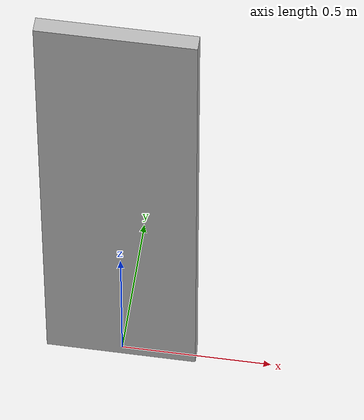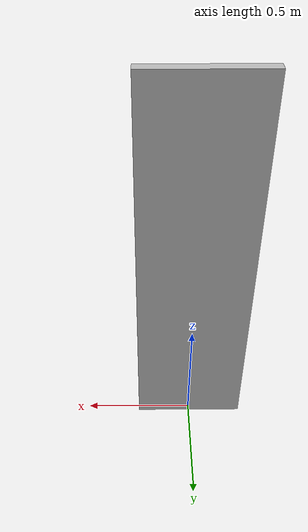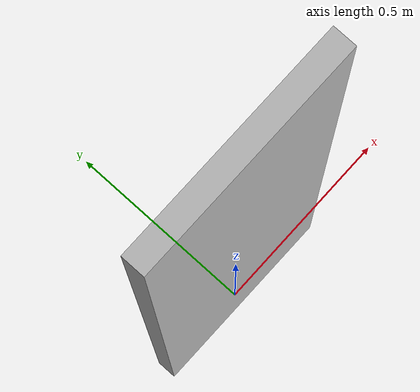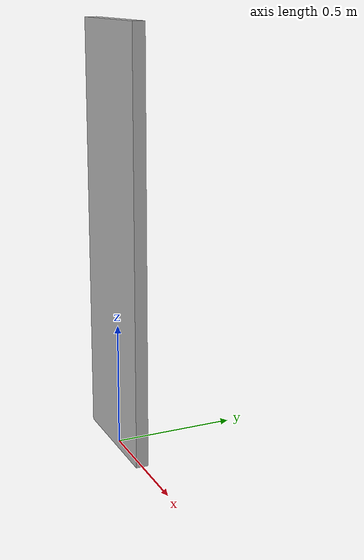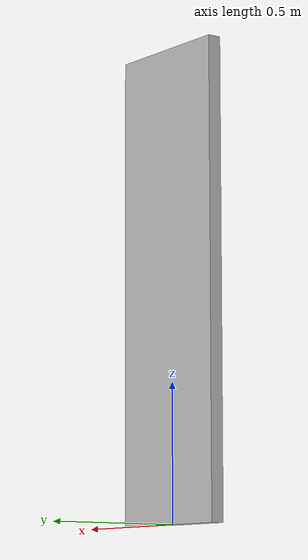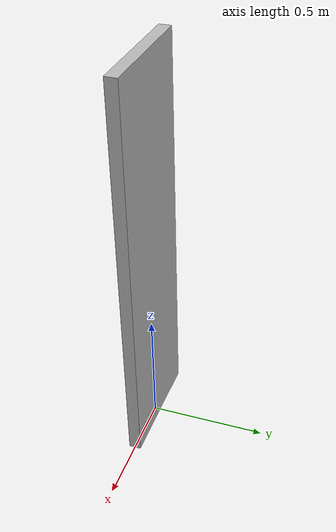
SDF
<?xml version="1.0" ?>
<sdf version="1.6">
  <model name="person_adult_1">
    <static>true</static>
    <link name="link">
      <gravity>false</gravity>
      <pose>0 0 0.85 0 0 0</pose>
      <visual name="visual">
        <geometry>
          <box><size>0.5 0.05 1.7</size></box>
        </geometry>
        <material>
          <script>
            <uri>model://person_adult_1/materials/scripts</uri>
            <uri>model://person_adult_1/materials/textures</uri>
            <name>PersonAdult1/Diffuse</name>
          </script>
        </material>
      </visual>
    </link>
  </model>
</sdf>
